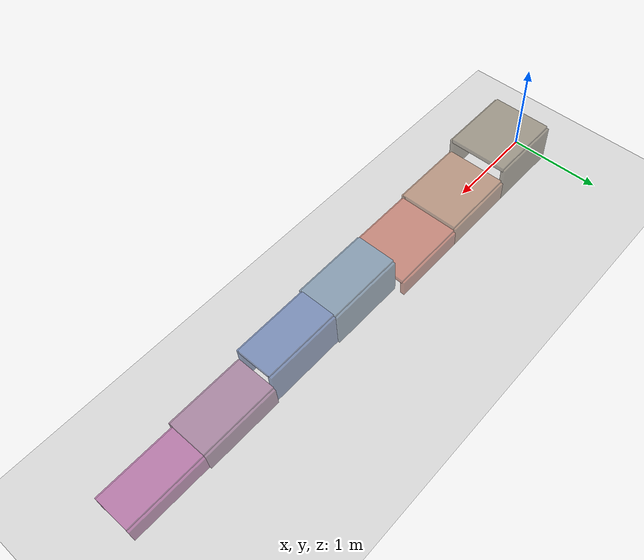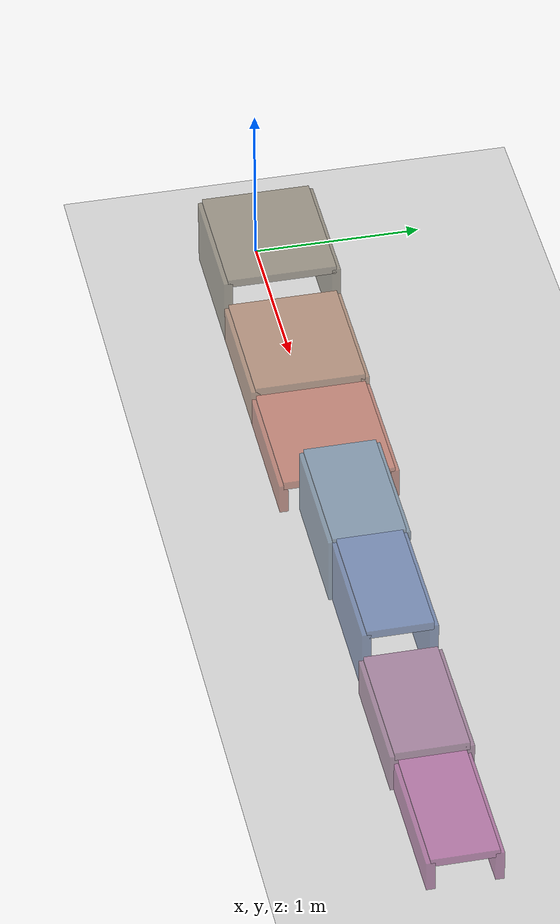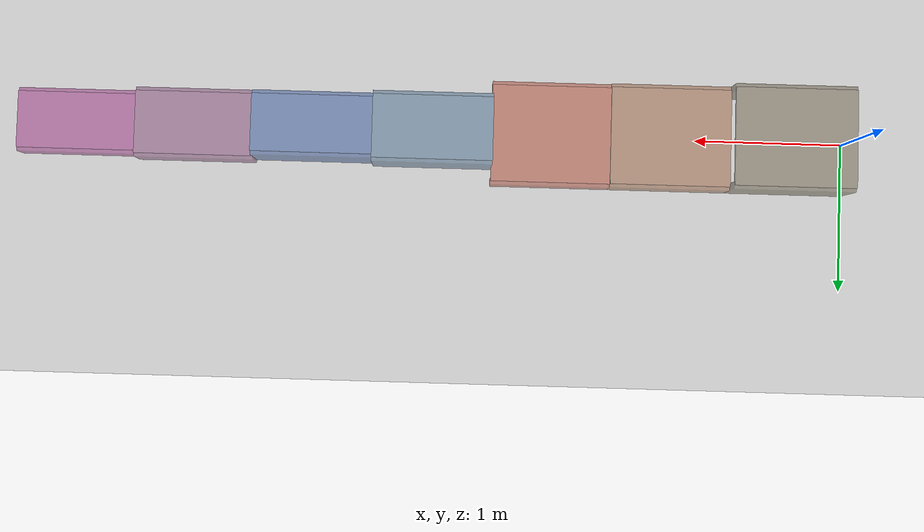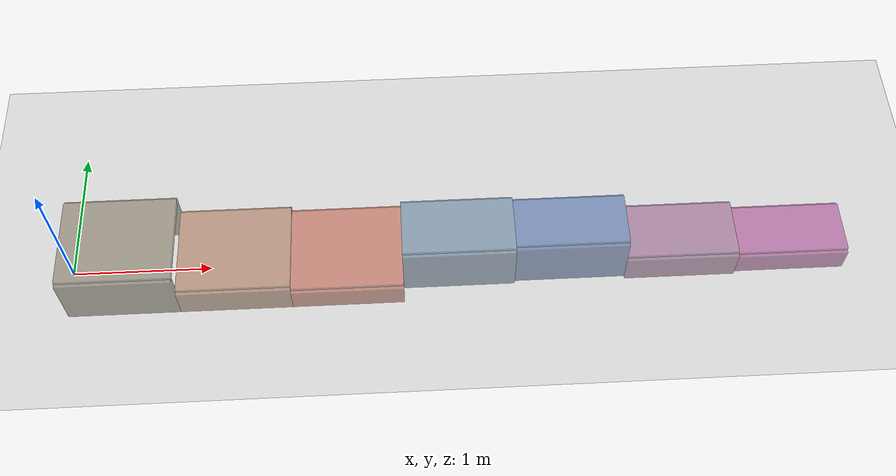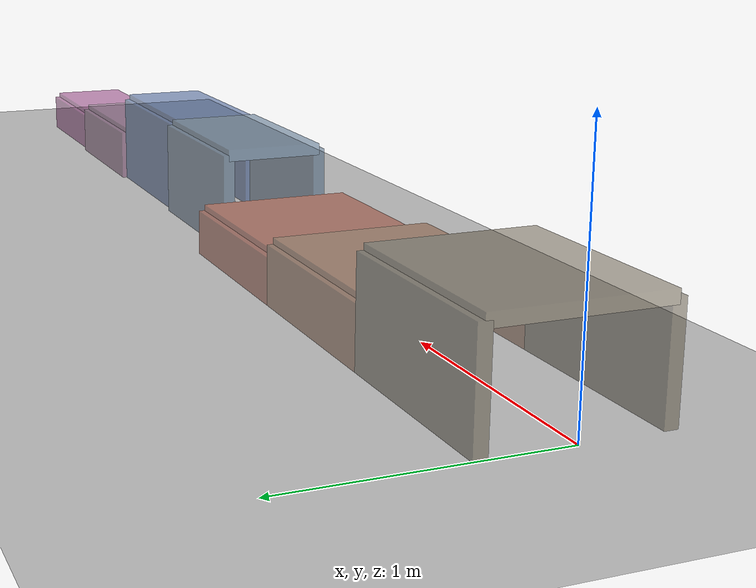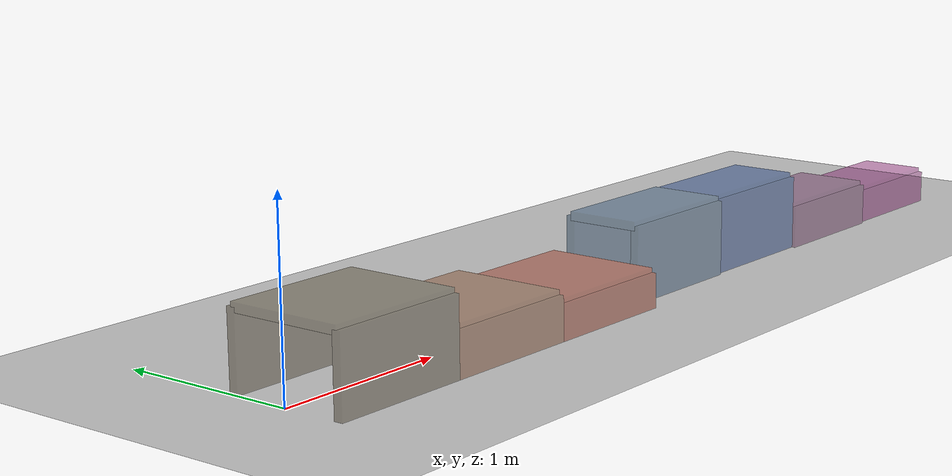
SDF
<sdf version="1.8">
 <world name="friction_world">
  <model name="ground_plane">
   <static>true</static>
   <link name="link">
    <collision name="collision">
     <geometry><plane><normal>0 0 1</normal><size>100 100</size></plane></geometry>
     <surface><friction><ode><mu>0.7</mu><mu2>0.7</mu2></ode></friction></surface>
    </collision>
    <visual name="visual">
     <geometry><plane><normal>0 0 1</normal><size>100 100</size></plane></geometry>
     <material><ambient>0.8 0.8 0.8 1</ambient><diffuse>0.8 0.8 0.8 1</diffuse></material>
    </visual>
   </link>
  </model>
  <model name="cave_m1_normal">
   <static>true</static>
   <link name="ceiling">
    <pose>0.4 0 0.42 0 0 0</pose>
    <collision name="c"><geometry><box><size>0.8 0.65 0.05</size></box></geometry></collision>
    <visual name="v">
     <geometry><box><size>0.8 0.65 0.05</size></box></geometry>
     <material><ambient>0.4 0.35 0.25 0.5</ambient></material>
     <transparency>0.2</transparency>
    </visual>
   </link>
   <link name="left_wall">
    <pose>0.4 -0.325 0.21 0 0 0</pose>
    <collision name="c"><geometry><box><size>0.8 0.05 0.42</size></box></geometry></collision>
    <visual name="v">
     <geometry><box><size>0.8 0.05 0.42</size></box></geometry>
     <material><ambient>0.35200000000000004 0.308 0.22 0.5</ambient></material>
     <transparency>0.2</transparency>
    </visual>
   </link>
   <link name="right_wall">
    <pose>0.4 0.325 0.21 0 0 0</pose>
    <collision name="c"><geometry><box><size>0.8 0.05 0.42</size></box></geometry></collision>
    <visual name="v">
     <geometry><box><size>0.8 0.05 0.42</size></box></geometry>
     <material><ambient>0.35200000000000004 0.308 0.22 0.5</ambient></material>
     <transparency>0.2</transparency>
    </visual>
   </link>
  </model>
  <model name="cave_m2_low_moderate">
   <static>true</static>
   <link name="ceiling">
    <pose>1.2000000000000002 0 0.24 0 0 0</pose>
    <collision name="c"><geometry><box><size>0.8 0.65 0.05</size></box></geometry></collision>
    <visual name="v">
     <geometry><box><size>0.8 0.65 0.05</size></box></geometry>
     <material><ambient>0.6 0.35 0.2 0.5</ambient></material>
     <transparency>0.2</transparency>
    </visual>
   </link>
   <link name="left_wall">
    <pose>1.2000000000000002 -0.325 0.12 0 0 0</pose>
    <collision name="c"><geometry><box><size>0.8 0.05 0.24</size></box></geometry></collision>
    <visual name="v">
     <geometry><box><size>0.8 0.05 0.24</size></box></geometry>
     <material><ambient>0.528 0.308 0.17600000000000002 0.5</ambient></material>
     <transparency>0.2</transparency>
    </visual>
   </link>
   <link name="right_wall">
    <pose>1.2000000000000002 0.325 0.12 0 0 0</pose>
    <collision name="c"><geometry><box><size>0.8 0.05 0.24</size></box></geometry></collision>
    <visual name="v">
     <geometry><box><size>0.8 0.05 0.24</size></box></geometry>
     <material><ambient>0.528 0.308 0.17600000000000002 0.5</ambient></material>
     <transparency>0.2</transparency>
    </visual>
   </link>
  </model>
  <model name="cave_m3_low_extreme">
   <static>true</static>
   <link name="ceiling">
    <pose>2.0 0 0.19 0 0 0</pose>
    <collision name="c"><geometry><box><size>0.8 0.65 0.05</size></box></geometry></collision>
    <visual name="v">
     <geometry><box><size>0.8 0.65 0.05</size></box></geometry>
     <material><ambient>0.7 0.25 0.15 0.5</ambient></material>
     <transparency>0.2</transparency>
    </visual>
   </link>
   <link name="left_wall">
    <pose>2.0 -0.325 0.095 0 0 0</pose>
    <collision name="c"><geometry><box><size>0.8 0.05 0.19</size></box></geometry></collision>
    <visual name="v">
     <geometry><box><size>0.8 0.05 0.19</size></box></geometry>
     <material><ambient>0.616 0.22 0.132 0.5</ambient></material>
     <transparency>0.2</transparency>
    </visual>
   </link>
   <link name="right_wall">
    <pose>2.0 0.325 0.095 0 0 0</pose>
    <collision name="c"><geometry><box><size>0.8 0.05 0.19</size></box></geometry></collision>
    <visual name="v">
     <geometry><box><size>0.8 0.05 0.19</size></box></geometry>
     <material><ambient>0.616 0.22 0.132 0.5</ambient></material>
     <transparency>0.2</transparency>
    </visual>
   </link>
  </model>
  <model name="cave_m4_squeeze_moderate">
   <static>true</static>
   <link name="ceiling">
    <pose>2.8000000000000003 0 0.42 0 0 0</pose>
    <collision name="c"><geometry><box><size>0.8 0.42 0.05</size></box></geometry></collision>
    <visual name="v">
     <geometry><box><size>0.8 0.42 0.05</size></box></geometry>
     <material><ambient>0.25 0.4 0.55 0.5</ambient></material>
     <transparency>0.2</transparency>
    </visual>
   </link>
   <link name="left_wall">
    <pose>2.8000000000000003 -0.21 0.21 0 0 0</pose>
    <collision name="c"><geometry><box><size>0.8 0.05 0.42</size></box></geometry></collision>
    <visual name="v">
     <geometry><box><size>0.8 0.05 0.42</size></box></geometry>
     <material><ambient>0.22 0.35200000000000004 0.48400000000000004 0.5</ambient></material>
     <transparency>0.2</transparency>
    </visual>
   </link>
   <link name="right_wall">
    <pose>2.8000000000000003 0.21 0.21 0 0 0</pose>
    <collision name="c"><geometry><box><size>0.8 0.05 0.42</size></box></geometry></collision>
    <visual name="v">
     <geometry><box><size>0.8 0.05 0.42</size></box></geometry>
     <material><ambient>0.22 0.35200000000000004 0.48400000000000004 0.5</ambient></material>
     <transparency>0.2</transparency>
    </visual>
   </link>
  </model>
  <model name="cave_m5_squeeze_extreme">
   <static>true</static>
   <link name="ceiling">
    <pose>3.6 0 0.42 0 0 0</pose>
    <collision name="c"><geometry><box><size>0.8 0.38 0.05</size></box></geometry></collision>
    <visual name="v">
     <geometry><box><size>0.8 0.38 0.05</size></box></geometry>
     <material><ambient>0.15 0.3 0.6 0.5</ambient></material>
     <transparency>0.2</transparency>
    </visual>
   </link>
   <link name="left_wall">
    <pose>3.6 -0.19 0.21 0 0 0</pose>
    <collision name="c"><geometry><box><size>0.8 0.05 0.42</size></box></geometry></collision>
    <visual name="v">
     <geometry><box><size>0.8 0.05 0.42</size></box></geometry>
     <material><ambient>0.132 0.264 0.528 0.5</ambient></material>
     <transparency>0.2</transparency>
    </visual>
   </link>
   <link name="right_wall">
    <pose>3.6 0.19 0.21 0 0 0</pose>
    <collision name="c"><geometry><box><size>0.8 0.05 0.42</size></box></geometry></collision>
    <visual name="v">
     <geometry><box><size>0.8 0.05 0.42</size></box></geometry>
     <material><ambient>0.132 0.264 0.528 0.5</ambient></material>
     <transparency>0.2</transparency>
    </visual>
   </link>
  </model>
  <model name="cave_m6_both_moderate">
   <static>true</static>
   <link name="ceiling">
    <pose>4.4 0 0.24 0 0 0</pose>
    <collision name="c"><geometry><box><size>0.8 0.42 0.05</size></box></geometry></collision>
    <visual name="v">
     <geometry><box><size>0.8 0.42 0.05</size></box></geometry>
     <material><ambient>0.5 0.25 0.45 0.5</ambient></material>
     <transparency>0.2</transparency>
    </visual>
   </link>
   <link name="left_wall">
    <pose>4.4 -0.21 0.12 0 0 0</pose>
    <collision name="c"><geometry><box><size>0.8 0.05 0.24</size></box></geometry></collision>
    <visual name="v">
     <geometry><box><size>0.8 0.05 0.24</size></box></geometry>
     <material><ambient>0.44 0.22 0.396 0.5</ambient></material>
     <transparency>0.2</transparency>
    </visual>
   </link>
   <link name="right_wall">
    <pose>4.4 0.21 0.12 0 0 0</pose>
    <collision name="c"><geometry><box><size>0.8 0.05 0.24</size></box></geometry></collision>
    <visual name="v">
     <geometry><box><size>0.8 0.05 0.24</size></box></geometry>
     <material><ambient>0.44 0.22 0.396 0.5</ambient></material>
     <transparency>0.2</transparency>
    </visual>
   </link>
  </model>
  <model name="cave_m7_both_extreme">
   <static>true</static>
   <link name="ceiling">
    <pose>5.200000000000001 0 0.19 0 0 0</pose>
    <collision name="c"><geometry><box><size>0.8 0.38 0.05</size></box></geometry></collision>
    <visual name="v">
     <geometry><box><size>0.8 0.38 0.05</size></box></geometry>
     <material><ambient>0.6 0.15 0.5 0.5</ambient></material>
     <transparency>0.2</transparency>
    </visual>
   </link>
   <link name="left_wall">
    <pose>5.200000000000001 -0.19 0.095 0 0 0</pose>
    <collision name="c"><geometry><box><size>0.8 0.05 0.19</size></box></geometry></collision>
    <visual name="v">
     <geometry><box><size>0.8 0.05 0.19</size></box></geometry>
     <material><ambient>0.528 0.132 0.44 0.5</ambient></material>
     <transparency>0.2</transparency>
    </visual>
   </link>
   <link name="right_wall">
    <pose>5.200000000000001 0.19 0.095 0 0 0</pose>
    <collision name="c"><geometry><box><size>0.8 0.05 0.19</size></box></geometry></collision>
    <visual name="v">
     <geometry><box><size>0.8 0.05 0.19</size></box></geometry>
     <material><ambient>0.528 0.132 0.44 0.5</ambient></material>
     <transparency>0.2</transparency>
    </visual>
   </link>
  </model>
 </world>
</sdf>
